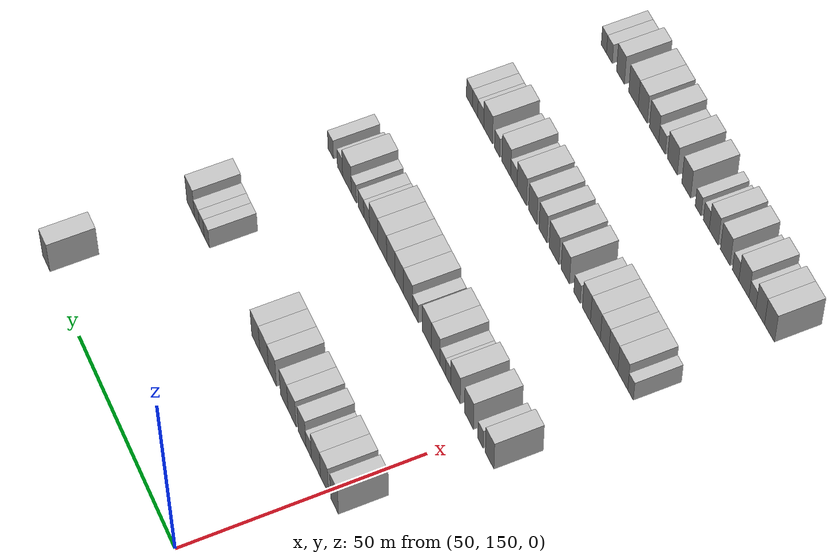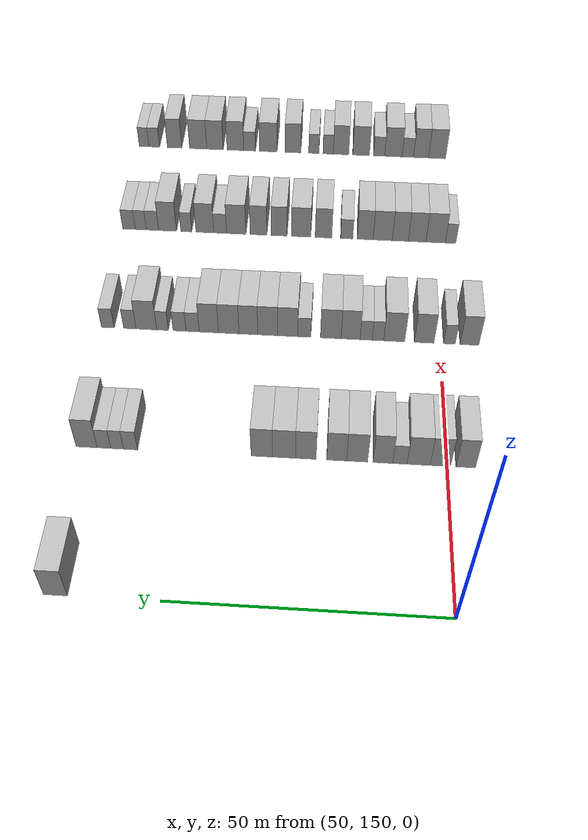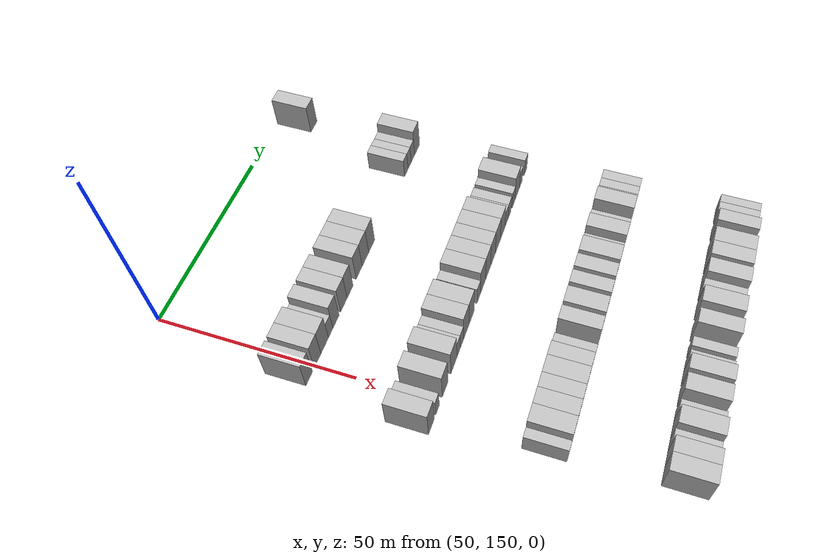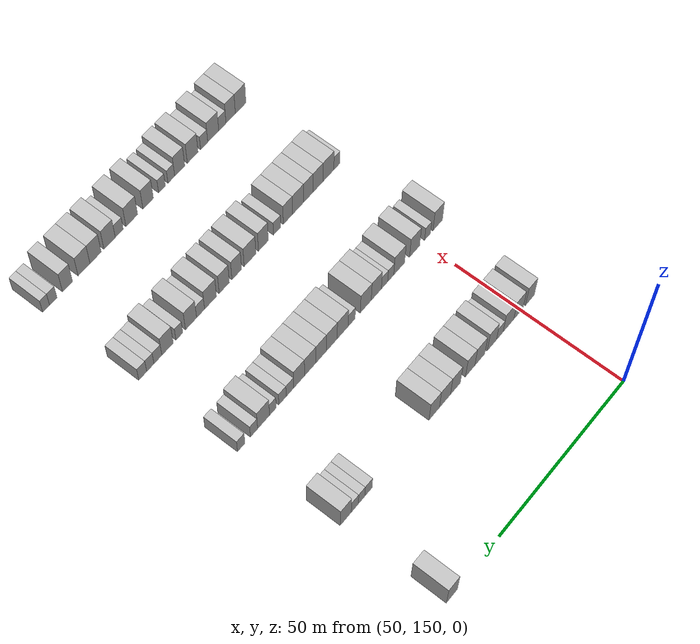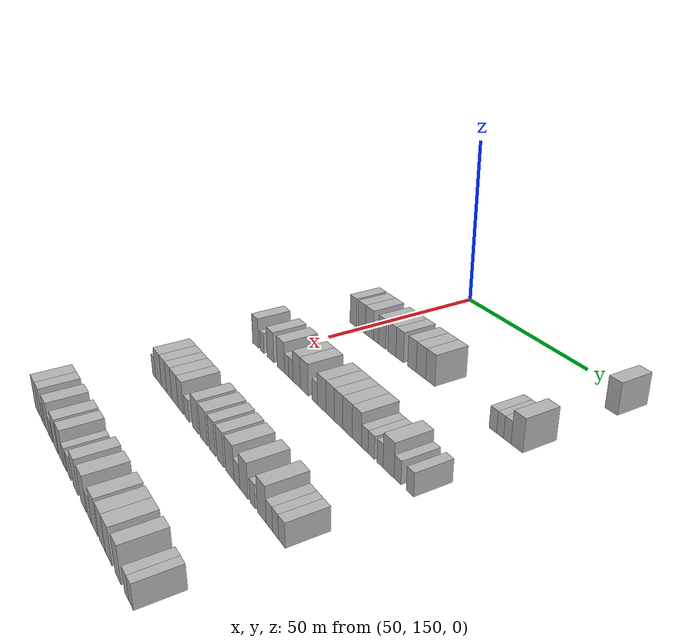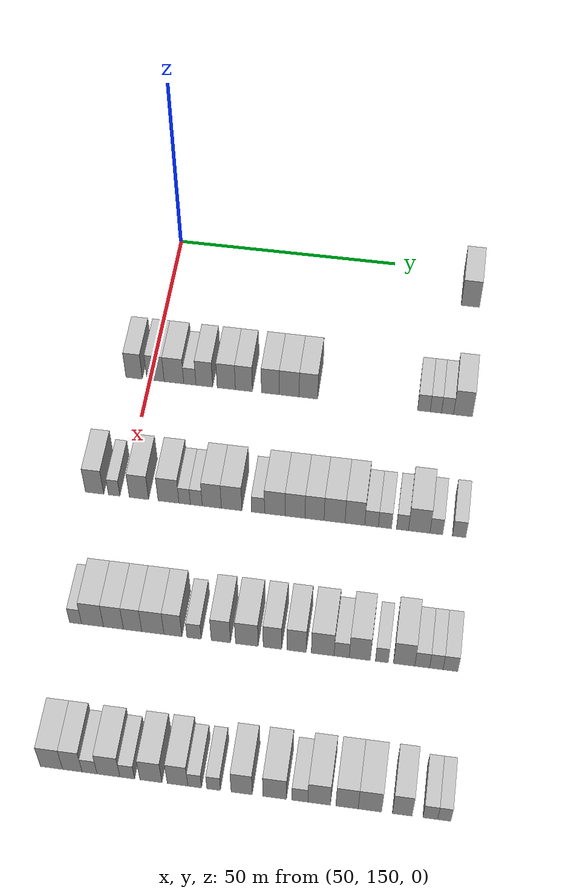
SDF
<sdf version="1.6">
 <world name="default">
  <model name="building_400">
   <static>1</static>
   <pose>55.0000 218.0210 0 0.000000 0.000000 0.000000</pose>
   <link name="link">
    <pose>0 0 4.50 0 0 0</pose>
    <collision name="collision"><geometry><box><size>10.0000 4.1286 9.0000</size></box></geometry></collision>
    <visual name="visual">
     <cast_shadows>0</cast_shadows>
     <geometry><box><size>10.0000 4.1286 9.0000</size></box></geometry>
     <material>
      <script>
       <uri>model://HANNAS_wall/materials/scripts</uri>
       <uri>model://HANNAS_wall/materials/textures</uri>
       <name>vrc/HANNAS_wall</name>
      </script>
     </material>
    </visual>
   </link>
  </model>
  <model name="building_607">
   <static>1</static>
   <pose>85.0000 146.5369 0 0.000000 0.000000 0.000000</pose>
   <link name="link">
    <pose>0 0 4.50 0 0 0</pose>
    <collision name="collision"><geometry><box><size>10.0000 3.6554 9.0000</size></box></geometry></collision>
    <visual name="visual">
     <cast_shadows>0</cast_shadows>
     <geometry><box><size>10.0000 3.6554 9.0000</size></box></geometry>
     <material>
      <script>
       <uri>model://HANNAS_wall/materials/scripts</uri>
       <uri>model://HANNAS_wall/materials/textures</uri>
       <name>vrc/HANNAS_wall</name>
      </script>
     </material>
    </visual>
   </link>
  </model>
  <model name="building_608">
   <static>1</static>
   <pose>85.0000 151.2870 0 0.000000 0.000000 0.000000</pose>
   <link name="link">
    <pose>0 0 4.50 0 0 0</pose>
    <collision name="collision"><geometry><box><size>10.0000 3.8447 9.0000</size></box></geometry></collision>
    <visual name="visual">
     <cast_shadows>0</cast_shadows>
     <geometry><box><size>10.0000 3.8447 9.0000</size></box></geometry>
     <material>
      <script>
       <uri>model://HANNAS_wall/materials/scripts</uri>
       <uri>model://HANNAS_wall/materials/textures</uri>
       <name>vrc/HANNAS_wall</name>
      </script>
     </material>
    </visual>
   </link>
  </model>
  <model name="building_609">
   <static>1</static>
   <pose>85.0000 155.3871 0 0.000000 0.000000 0.000000</pose>
   <link name="link">
    <pose>0 0 4.50 0 0 0</pose>
    <collision name="collision"><geometry><box><size>10.0000 4.3556 9.0000</size></box></geometry></collision>
    <visual name="visual">
     <cast_shadows>0</cast_shadows>
     <geometry><box><size>10.0000 4.3556 9.0000</size></box></geometry>
     <material>
      <script>
       <uri>model://HANNAS_wall/materials/scripts</uri>
       <uri>model://HANNAS_wall/materials/textures</uri>
       <name>vrc/HANNAS_wall</name>
      </script>
     </material>
    </visual>
   </link>
  </model>
  <model name="building_610">
   <static>1</static>
   <pose>85.0000 158.9072 0 0.000000 0.000000 0.000000</pose>
   <link name="link">
    <pose>0 0 3.00 0 0 0</pose>
    <collision name="collision"><geometry><box><size>10.0000 2.6845 6.0000</size></box></geometry></collision>
    <visual name="visual">
     <cast_shadows>0</cast_shadows>
     <geometry><box><size>10.0000 2.6845 6.0000</size></box></geometry>
     <material>
      <script>
       <uri>model://HANNAS_wall/materials/scripts</uri>
       <uri>model://HANNAS_wall/materials/textures</uri>
       <name>vrc/HANNAS_wall</name>
      </script>
     </material>
    </visual>
   </link>
  </model>
  <model name="building_611">
   <static>1</static>
   <pose>85.0000 162.1031 0 0.000000 0.000000 0.000000</pose>
   <link name="link">
    <pose>0 0 4.50 0 0 0</pose>
    <collision name="collision"><geometry><box><size>10.0000 3.7073 9.0000</size></box></geometry></collision>
    <visual name="visual">
     <cast_shadows>0</cast_shadows>
     <geometry><box><size>10.0000 3.7073 9.0000</size></box></geometry>
     <material>
      <script>
       <uri>model://HANNAS_wall/materials/scripts</uri>
       <uri>model://HANNAS_wall/materials/textures</uri>
       <name>vrc/HANNAS_wall</name>
      </script>
     </material>
    </visual>
   </link>
  </model>
  <model name="building_612">
   <static>1</static>
   <pose>85.0000 166.9624 0 0.000000 0.000000 0.000000</pose>
   <link name="link">
    <pose>0 0 4.50 0 0 0</pose>
    <collision name="collision"><geometry><box><size>10.0000 4.0112 9.0000</size></box></geometry></collision>
    <visual name="visual">
     <cast_shadows>0</cast_shadows>
     <geometry><box><size>10.0000 4.0112 9.0000</size></box></geometry>
     <material>
      <script>
       <uri>model://HANNAS_wall/materials/scripts</uri>
       <uri>model://HANNAS_wall/materials/textures</uri>
       <name>vrc/HANNAS_wall</name>
      </script>
     </material>
    </visual>
   </link>
  </model>
  <model name="building_613">
   <static>1</static>
   <pose>85.0000 170.8373 0 0.000000 0.000000 0.000000</pose>
   <link name="link">
    <pose>0 0 4.50 0 0 0</pose>
    <collision name="collision"><geometry><box><size>10.0000 3.7385 9.0000</size></box></geometry></collision>
    <visual name="visual">
     <cast_shadows>0</cast_shadows>
     <geometry><box><size>10.0000 3.7385 9.0000</size></box></geometry>
     <material>
      <script>
       <uri>model://HANNAS_wall/materials/scripts</uri>
       <uri>model://HANNAS_wall/materials/textures</uri>
       <name>vrc/HANNAS_wall</name>
      </script>
     </material>
    </visual>
   </link>
  </model>
  <model name="building_614">
   <static>1</static>
   <pose>85.0000 176.6655 0 0.000000 0.000000 0.000000</pose>
   <link name="link">
    <pose>0 0 4.50 0 0 0</pose>
    <collision name="collision"><geometry><box><size>10.0000 3.9181 9.0000</size></box></geometry></collision>
    <visual name="visual">
     <cast_shadows>0</cast_shadows>
     <geometry><box><size>10.0000 3.9181 9.0000</size></box></geometry>
     <material>
      <script>
       <uri>model://HANNAS_wall/materials/scripts</uri>
       <uri>model://HANNAS_wall/materials/textures</uri>
       <name>vrc/HANNAS_wall</name>
      </script>
     </material>
    </visual>
   </link>
  </model>
  <model name="building_615">
   <static>1</static>
   <pose>85.0000 180.8006 0 0.000000 0.000000 0.000000</pose>
   <link name="link">
    <pose>0 0 4.50 0 0 0</pose>
    <collision name="collision"><geometry><box><size>10.0000 4.3520 9.0000</size></box></geometry></collision>
    <visual name="visual">
     <cast_shadows>0</cast_shadows>
     <geometry><box><size>10.0000 4.3520 9.0000</size></box></geometry>
     <material>
      <script>
       <uri>model://HANNAS_wall/materials/scripts</uri>
       <uri>model://HANNAS_wall/materials/textures</uri>
       <name>vrc/HANNAS_wall</name>
      </script>
     </material>
    </visual>
   </link>
  </model>
  <model name="building_616">
   <static>1</static>
   <pose>85.0000 185.0105 0 0.000000 0.000000 0.000000</pose>
   <link name="link">
    <pose>0 0 4.50 0 0 0</pose>
    <collision name="collision"><geometry><box><size>10.0000 4.0678 9.0000</size></box></geometry></collision>
    <visual name="visual">
     <cast_shadows>0</cast_shadows>
     <geometry><box><size>10.0000 4.0678 9.0000</size></box></geometry>
     <material>
      <script>
       <uri>model://HANNAS_wall/materials/scripts</uri>
       <uri>model://HANNAS_wall/materials/textures</uri>
       <name>vrc/HANNAS_wall</name>
      </script>
     </material>
    </visual>
   </link>
  </model>
  <model name="building_617">
   <static>1</static>
   <pose>85.0000 210.1346 0 0.000000 0.000000 0.000000</pose>
   <link name="link">
    <pose>0 0 3.00 0 0 0</pose>
    <collision name="collision"><geometry><box><size>10.0000 2.7268 6.0000</size></box></geometry></collision>
    <visual name="visual">
     <cast_shadows>0</cast_shadows>
     <geometry><box><size>10.0000 2.7268 6.0000</size></box></geometry>
     <material>
      <script>
       <uri>model://HANNAS_wall/materials/scripts</uri>
       <uri>model://HANNAS_wall/materials/textures</uri>
       <name>vrc/HANNAS_wall</name>
      </script>
     </material>
    </visual>
   </link>
  </model>
  <model name="building_618">
   <static>1</static>
   <pose>85.0000 212.7203 0 0.000000 0.000000 0.000000</pose>
   <link name="link">
    <pose>0 0 3.00 0 0 0</pose>
    <collision name="collision"><geometry><box><size>10.0000 2.4447 6.0000</size></box></geometry></collision>
    <visual name="visual">
     <cast_shadows>0</cast_shadows>
     <geometry><box><size>10.0000 2.4447 6.0000</size></box></geometry>
     <material>
      <script>
       <uri>model://HANNAS_wall/materials/scripts</uri>
       <uri>model://HANNAS_wall/materials/textures</uri>
       <name>vrc/HANNAS_wall</name>
      </script>
     </material>
    </visual>
   </link>
  </model>
  <model name="building_619">
   <static>1</static>
   <pose>85.0000 215.2509 0 0.000000 0.000000 0.000000</pose>
   <link name="link">
    <pose>0 0 3.00 0 0 0</pose>
    <collision name="collision"><geometry><box><size>10.0000 2.6164 6.0000</size></box></geometry></collision>
    <visual name="visual">
     <cast_shadows>0</cast_shadows>
     <geometry><box><size>10.0000 2.6164 6.0000</size></box></geometry>
     <material>
      <script>
       <uri>model://HANNAS_wall/materials/scripts</uri>
       <uri>model://HANNAS_wall/materials/textures</uri>
       <name>vrc/HANNAS_wall</name>
      </script>
     </material>
    </visual>
   </link>
  </model>
  <model name="building_620">
   <static>1</static>
   <pose>85.0000 218.5862 0 0.000000 0.000000 0.000000</pose>
   <link name="link">
    <pose>0 0 4.50 0 0 0</pose>
    <collision name="collision"><geometry><box><size>10.0000 4.0541 9.0000</size></box></geometry></collision>
    <visual name="visual">
     <cast_shadows>0</cast_shadows>
     <geometry><box><size>10.0000 4.0541 9.0000</size></box></geometry>
     <material>
      <script>
       <uri>model://HANNAS_wall/materials/scripts</uri>
       <uri>model://HANNAS_wall/materials/textures</uri>
       <name>vrc/HANNAS_wall</name>
      </script>
     </material>
    </visual>
   </link>
  </model>
  <model name="building_832">
   <static>1</static>
   <pose>115.0000 143.9436 0 0.000000 0.000000 0.000000</pose>
   <link name="link">
    <pose>0 0 4.50 0 0 0</pose>
    <collision name="collision"><geometry><box><size>10.0000 3.8871 9.0000</size></box></geometry></collision>
    <visual name="visual">
     <cast_shadows>0</cast_shadows>
     <geometry><box><size>10.0000 3.8871 9.0000</size></box></geometry>
     <material>
      <script>
       <uri>model://HANNAS_wall/materials/scripts</uri>
       <uri>model://HANNAS_wall/materials/textures</uri>
       <name>vrc/HANNAS_wall</name>
      </script>
     </material>
    </visual>
   </link>
  </model>
  <model name="building_833">
   <static>1</static>
   <pose>115.0000 148.1008 0 0.000000 0.000000 0.000000</pose>
   <link name="link">
    <pose>0 0 3.00 0 0 0</pose>
    <collision name="collision"><geometry><box><size>10.0000 2.4274 6.0000</size></box></geometry></collision>
    <visual name="visual">
     <cast_shadows>0</cast_shadows>
     <geometry><box><size>10.0000 2.4274 6.0000</size></box></geometry>
     <material>
      <script>
       <uri>model://HANNAS_wall/materials/scripts</uri>
       <uri>model://HANNAS_wall/materials/textures</uri>
       <name>vrc/HANNAS_wall</name>
      </script>
     </material>
    </visual>
   </link>
  </model>
  <model name="building_834">
   <static>1</static>
   <pose>115.0000 153.3546 0 0.000000 0.000000 0.000000</pose>
   <link name="link">
    <pose>0 0 4.50 0 0 0</pose>
    <collision name="collision"><geometry><box><size>10.0000 4.0801 9.0000</size></box></geometry></collision>
    <visual name="visual">
     <cast_shadows>0</cast_shadows>
     <geometry><box><size>10.0000 4.0801 9.0000</size></box></geometry>
     <material>
      <script>
       <uri>model://HANNAS_wall/materials/scripts</uri>
       <uri>model://HANNAS_wall/materials/textures</uri>
       <name>vrc/HANNAS_wall</name>
      </script>
     </material>
    </visual>
   </link>
  </model>
  <model name="building_835">
   <static>1</static>
   <pose>115.0000 159.5913 0 0.000000 0.000000 0.000000</pose>
   <link name="link">
    <pose>0 0 4.50 0 0 0</pose>
    <collision name="collision"><geometry><box><size>10.0000 4.3933 9.0000</size></box></geometry></collision>
    <visual name="visual">
     <cast_shadows>0</cast_shadows>
     <geometry><box><size>10.0000 4.3933 9.0000</size></box></geometry>
     <material>
      <script>
       <uri>model://HANNAS_wall/materials/scripts</uri>
       <uri>model://HANNAS_wall/materials/textures</uri>
       <name>vrc/HANNAS_wall</name>
      </script>
     </material>
    </visual>
   </link>
  </model>
  <model name="building_836">
   <static>1</static>
   <pose>115.0000 162.9880 0 0.000000 0.000000 0.000000</pose>
   <link name="link">
    <pose>0 0 3.00 0 0 0</pose>
    <collision name="collision"><geometry><box><size>10.0000 2.4001 6.0000</size></box></geometry></collision>
    <visual name="visual">
     <cast_shadows>0</cast_shadows>
     <geometry><box><size>10.0000 2.4001 6.0000</size></box></geometry>
     <material>
      <script>
       <uri>model://HANNAS_wall/materials/scripts</uri>
       <uri>model://HANNAS_wall/materials/textures</uri>
       <name>vrc/HANNAS_wall</name>
      </script>
     </material>
    </visual>
   </link>
  </model>
  <model name="building_837">
   <static>1</static>
   <pose>115.0000 165.4430 0 0.000000 0.000000 0.000000</pose>
   <link name="link">
    <pose>0 0 3.00 0 0 0</pose>
    <collision name="collision"><geometry><box><size>10.0000 2.5099 6.0000</size></box></geometry></collision>
    <visual name="visual">
     <cast_shadows>0</cast_shadows>
     <geometry><box><size>10.0000 2.5099 6.0000</size></box></geometry>
     <material>
      <script>
       <uri>model://HANNAS_wall/materials/scripts</uri>
       <uri>model://HANNAS_wall/materials/textures</uri>
       <name>vrc/HANNAS_wall</name>
      </script>
     </material>
    </visual>
   </link>
  </model>
  <model name="building_838">
   <static>1</static>
   <pose>115.0000 168.7030 0 0.000000 0.000000 0.000000</pose>
   <link name="link">
    <pose>0 0 4.50 0 0 0</pose>
    <collision name="collision"><geometry><box><size>10.0000 4.0102 9.0000</size></box></geometry></collision>
    <visual name="visual">
     <cast_shadows>0</cast_shadows>
     <geometry><box><size>10.0000 4.0102 9.0000</size></box></geometry>
     <material>
      <script>
       <uri>model://HANNAS_wall/materials/scripts</uri>
       <uri>model://HANNAS_wall/materials/textures</uri>
       <name>vrc/HANNAS_wall</name>
      </script>
     </material>
    </visual>
   </link>
  </model>
  <model name="building_839">
   <static>1</static>
   <pose>115.0000 172.8626 0 0.000000 0.000000 0.000000</pose>
   <link name="link">
    <pose>0 0 4.50 0 0 0</pose>
    <collision name="collision"><geometry><box><size>10.0000 4.3090 9.0000</size></box></geometry></collision>
    <visual name="visual">
     <cast_shadows>0</cast_shadows>
     <geometry><box><size>10.0000 4.3090 9.0000</size></box></geometry>
     <material>
      <script>
       <uri>model://HANNAS_wall/materials/scripts</uri>
       <uri>model://HANNAS_wall/materials/textures</uri>
       <name>vrc/HANNAS_wall</name>
      </script>
     </material>
    </visual>
   </link>
  </model>
  <model name="building_840">
   <static>1</static>
   <pose>115.0000 178.3812 0 0.000000 0.000000 0.000000</pose>
   <link name="link">
    <pose>0 0 3.00 0 0 0</pose>
    <collision name="collision"><geometry><box><size>10.0000 2.7280 6.0000</size></box></geometry></collision>
    <visual name="visual">
     <cast_shadows>0</cast_shadows>
     <geometry><box><size>10.0000 2.7280 6.0000</size></box></geometry>
     <material>
      <script>
       <uri>model://HANNAS_wall/materials/scripts</uri>
       <uri>model://HANNAS_wall/materials/textures</uri>
       <name>vrc/HANNAS_wall</name>
      </script>
     </material>
    </visual>
   </link>
  </model>
  <model name="building_841">
   <static>1</static>
   <pose>115.0000 181.8839 0 0.000000 0.000000 0.000000</pose>
   <link name="link">
    <pose>0 0 4.50 0 0 0</pose>
    <collision name="collision"><geometry><box><size>10.0000 4.2775 9.0000</size></box></geometry></collision>
    <visual name="visual">
     <cast_shadows>0</cast_shadows>
     <geometry><box><size>10.0000 4.2775 9.0000</size></box></geometry>
     <material>
      <script>
       <uri>model://HANNAS_wall/materials/scripts</uri>
       <uri>model://HANNAS_wall/materials/textures</uri>
       <name>vrc/HANNAS_wall</name>
      </script>
     </material>
    </visual>
   </link>
  </model>
  <model name="building_842">
   <static>1</static>
   <pose>115.0000 186.1047 0 0.000000 0.000000 0.000000</pose>
   <link name="link">
    <pose>0 0 4.50 0 0 0</pose>
    <collision name="collision"><geometry><box><size>10.0000 4.1642 9.0000</size></box></geometry></collision>
    <visual name="visual">
     <cast_shadows>0</cast_shadows>
     <geometry><box><size>10.0000 4.1642 9.0000</size></box></geometry>
     <material>
      <script>
       <uri>model://HANNAS_wall/materials/scripts</uri>
       <uri>model://HANNAS_wall/materials/textures</uri>
       <name>vrc/HANNAS_wall</name>
      </script>
     </material>
    </visual>
   </link>
  </model>
  <model name="building_843">
   <static>1</static>
   <pose>115.0000 190.1645 0 0.000000 0.000000 0.000000</pose>
   <link name="link">
    <pose>0 0 4.50 0 0 0</pose>
    <collision name="collision"><geometry><box><size>10.0000 3.9553 9.0000</size></box></geometry></collision>
    <visual name="visual">
     <cast_shadows>0</cast_shadows>
     <geometry><box><size>10.0000 3.9553 9.0000</size></box></geometry>
     <material>
      <script>
       <uri>model://HANNAS_wall/materials/scripts</uri>
       <uri>model://HANNAS_wall/materials/textures</uri>
       <name>vrc/HANNAS_wall</name>
      </script>
     </material>
    </visual>
   </link>
  </model>
  <model name="building_844">
   <static>1</static>
   <pose>115.0000 194.3138 0 0.000000 0.000000 0.000000</pose>
   <link name="link">
    <pose>0 0 4.50 0 0 0</pose>
    <collision name="collision"><geometry><box><size>10.0000 4.3434 9.0000</size></box></geometry></collision>
    <visual name="visual">
     <cast_shadows>0</cast_shadows>
     <geometry><box><size>10.0000 4.3434 9.0000</size></box></geometry>
     <material>
      <script>
       <uri>model://HANNAS_wall/materials/scripts</uri>
       <uri>model://HANNAS_wall/materials/textures</uri>
       <name>vrc/HANNAS_wall</name>
      </script>
     </material>
    </visual>
   </link>
  </model>
  <model name="building_845">
   <static>1</static>
   <pose>115.0000 198.5264 0 0.000000 0.000000 0.000000</pose>
   <link name="link">
    <pose>0 0 4.50 0 0 0</pose>
    <collision name="collision"><geometry><box><size>10.0000 4.0819 9.0000</size></box></geometry></collision>
    <visual name="visual">
     <cast_shadows>0</cast_shadows>
     <geometry><box><size>10.0000 4.0819 9.0000</size></box></geometry>
     <material>
      <script>
       <uri>model://HANNAS_wall/materials/scripts</uri>
       <uri>model://HANNAS_wall/materials/textures</uri>
       <name>vrc/HANNAS_wall</name>
      </script>
     </material>
    </visual>
   </link>
  </model>
  <model name="building_846">
   <static>1</static>
   <pose>115.0000 201.9786 0 0.000000 0.000000 0.000000</pose>
   <link name="link">
    <pose>0 0 3.00 0 0 0</pose>
    <collision name="collision"><geometry><box><size>10.0000 2.8224 6.0000</size></box></geometry></collision>
    <visual name="visual">
     <cast_shadows>0</cast_shadows>
     <geometry><box><size>10.0000 2.8224 6.0000</size></box></geometry>
     <material>
      <script>
       <uri>model://HANNAS_wall/materials/scripts</uri>
       <uri>model://HANNAS_wall/materials/textures</uri>
       <name>vrc/HANNAS_wall</name>
      </script>
     </material>
    </visual>
   </link>
  </model>
  <model name="building_847">
   <static>1</static>
   <pose>115.0000 204.7551 0 0.000000 0.000000 0.000000</pose>
   <link name="link">
    <pose>0 0 3.00 0 0 0</pose>
    <collision name="collision"><geometry><box><size>10.0000 2.7306 6.0000</size></box></geometry></collision>
    <visual name="visual">
     <cast_shadows>0</cast_shadows>
     <geometry><box><size>10.0000 2.7306 6.0000</size></box></geometry>
     <material>
      <script>
       <uri>model://HANNAS_wall/materials/scripts</uri>
       <uri>model://HANNAS_wall/materials/textures</uri>
       <name>vrc/HANNAS_wall</name>
      </script>
     </material>
    </visual>
   </link>
  </model>
  <model name="building_848">
   <static>1</static>
   <pose>115.0000 208.3564 0 0.000000 0.000000 0.000000</pose>
   <link name="link">
    <pose>0 0 3.00 0 0 0</pose>
    <collision name="collision"><geometry><box><size>10.0000 2.4721 6.0000</size></box></geometry></collision>
    <visual name="visual">
     <cast_shadows>0</cast_shadows>
     <geometry><box><size>10.0000 2.4721 6.0000</size></box></geometry>
     <material>
      <script>
       <uri>model://HANNAS_wall/materials/scripts</uri>
       <uri>model://HANNAS_wall/materials/textures</uri>
       <name>vrc/HANNAS_wall</name>
      </script>
     </material>
    </visual>
   </link>
  </model>
  <model name="building_849">
   <static>1</static>
   <pose>115.0000 211.7989 0 0.000000 0.000000 0.000000</pose>
   <link name="link">
    <pose>0 0 4.50 0 0 0</pose>
    <collision name="collision"><geometry><box><size>10.0000 4.4128 9.0000</size></box></geometry></collision>
    <visual name="visual">
     <cast_shadows>0</cast_shadows>
     <geometry><box><size>10.0000 4.4128 9.0000</size></box></geometry>
     <material>
      <script>
       <uri>model://HANNAS_wall/materials/scripts</uri>
       <uri>model://HANNAS_wall/materials/textures</uri>
       <name>vrc/HANNAS_wall</name>
      </script>
     </material>
    </visual>
   </link>
  </model>
  <model name="building_850">
   <static>1</static>
   <pose>115.0000 215.3222 0 0.000000 0.000000 0.000000</pose>
   <link name="link">
    <pose>0 0 3.00 0 0 0</pose>
    <collision name="collision"><geometry><box><size>10.0000 2.6337 6.0000</size></box></geometry></collision>
    <visual name="visual">
     <cast_shadows>0</cast_shadows>
     <geometry><box><size>10.0000 2.6337 6.0000</size></box></geometry>
     <material>
      <script>
       <uri>model://HANNAS_wall/materials/scripts</uri>
       <uri>model://HANNAS_wall/materials/textures</uri>
       <name>vrc/HANNAS_wall</name>
      </script>
     </material>
    </visual>
   </link>
  </model>
  <model name="building_851">
   <static>1</static>
   <pose>115.0000 220.0068 0 0.000000 0.000000 0.000000</pose>
   <link name="link">
    <pose>0 0 3.00 0 0 0</pose>
    <collision name="collision"><geometry><box><size>10.0000 2.7357 6.0000</size></box></geometry></collision>
    <visual name="visual">
     <cast_shadows>0</cast_shadows>
     <geometry><box><size>10.0000 2.7357 6.0000</size></box></geometry>
     <material>
      <script>
       <uri>model://HANNAS_wall/materials/scripts</uri>
       <uri>model://HANNAS_wall/materials/textures</uri>
       <name>vrc/HANNAS_wall</name>
      </script>
     </material>
    </visual>
   </link>
  </model>
  <model name="building_1063">
   <static>1</static>
   <pose>145.0000 146.3541 0 0.000000 0.000000 0.000000</pose>
   <link name="link">
    <pose>0 0 3.00 0 0 0</pose>
    <collision name="collision"><geometry><box><size>10.0000 2.4199 6.0000</size></box></geometry></collision>
    <visual name="visual">
     <cast_shadows>0</cast_shadows>
     <geometry><box><size>10.0000 2.4199 6.0000</size></box></geometry>
     <material>
      <script>
       <uri>model://HANNAS_wall/materials/scripts</uri>
       <uri>model://HANNAS_wall/materials/textures</uri>
       <name>vrc/HANNAS_wall</name>
      </script>
     </material>
    </visual>
   </link>
  </model>
  <model name="building_1064">
   <static>1</static>
   <pose>145.0000 149.7691 0 0.000000 0.000000 0.000000</pose>
   <link name="link">
    <pose>0 0 4.50 0 0 0</pose>
    <collision name="collision"><geometry><box><size>10.0000 4.4101 9.0000</size></box></geometry></collision>
    <visual name="visual">
     <cast_shadows>0</cast_shadows>
     <geometry><box><size>10.0000 4.4101 9.0000</size></box></geometry>
     <material>
      <script>
       <uri>model://HANNAS_wall/materials/scripts</uri>
       <uri>model://HANNAS_wall/materials/textures</uri>
       <name>vrc/HANNAS_wall</name>
      </script>
     </material>
    </visual>
   </link>
  </model>
  <model name="building_1065">
   <static>1</static>
   <pose>145.0000 153.9793 0 0.000000 0.000000 0.000000</pose>
   <link name="link">
    <pose>0 0 4.50 0 0 0</pose>
    <collision name="collision"><geometry><box><size>10.0000 4.0102 9.0000</size></box></geometry></collision>
    <visual name="visual">
     <cast_shadows>0</cast_shadows>
     <geometry><box><size>10.0000 4.0102 9.0000</size></box></geometry>
     <material>
      <script>
       <uri>model://HANNAS_wall/materials/scripts</uri>
       <uri>model://HANNAS_wall/materials/textures</uri>
       <name>vrc/HANNAS_wall</name>
      </script>
     </material>
    </visual>
   </link>
  </model>
  <model name="building_1066">
   <static>1</static>
   <pose>145.0000 157.8211 0 0.000000 0.000000 0.000000</pose>
   <link name="link">
    <pose>0 0 4.50 0 0 0</pose>
    <collision name="collision"><geometry><box><size>10.0000 3.6734 9.0000</size></box></geometry></collision>
    <visual name="visual">
     <cast_shadows>0</cast_shadows>
     <geometry><box><size>10.0000 3.6734 9.0000</size></box></geometry>
     <material>
      <script>
       <uri>model://HANNAS_wall/materials/scripts</uri>
       <uri>model://HANNAS_wall/materials/textures</uri>
       <name>vrc/HANNAS_wall</name>
      </script>
     </material>
    </visual>
   </link>
  </model>
  <model name="building_1067">
   <static>1</static>
   <pose>145.0000 161.8676 0 0.000000 0.000000 0.000000</pose>
   <link name="link">
    <pose>0 0 4.50 0 0 0</pose>
    <collision name="collision"><geometry><box><size>10.0000 4.4196 9.0000</size></box></geometry></collision>
    <visual name="visual">
     <cast_shadows>0</cast_shadows>
     <geometry><box><size>10.0000 4.4196 9.0000</size></box></geometry>
     <material>
      <script>
       <uri>model://HANNAS_wall/materials/scripts</uri>
       <uri>model://HANNAS_wall/materials/textures</uri>
       <name>vrc/HANNAS_wall</name>
      </script>
     </material>
    </visual>
   </link>
  </model>
  <model name="building_1068">
   <static>1</static>
   <pose>145.0000 165.8832 0 0.000000 0.000000 0.000000</pose>
   <link name="link">
    <pose>0 0 4.50 0 0 0</pose>
    <collision name="collision"><geometry><box><size>10.0000 3.6117 9.0000</size></box></geometry></collision>
    <visual name="visual">
     <cast_shadows>0</cast_shadows>
     <geometry><box><size>10.0000 3.6117 9.0000</size></box></geometry>
     <material>
      <script>
       <uri>model://HANNAS_wall/materials/scripts</uri>
       <uri>model://HANNAS_wall/materials/textures</uri>
       <name>vrc/HANNAS_wall</name>
      </script>
     </material>
    </visual>
   </link>
  </model>
  <model name="building_1069">
   <static>1</static>
   <pose>145.0000 170.1122 0 0.000000 0.000000 0.000000</pose>
   <link name="link">
    <pose>0 0 3.00 0 0 0</pose>
    <collision name="collision"><geometry><box><size>10.0000 2.8463 6.0000</size></box></geometry></collision>
    <visual name="visual">
     <cast_shadows>0</cast_shadows>
     <geometry><box><size>10.0000 2.8463 6.0000</size></box></geometry>
     <material>
      <script>
       <uri>model://HANNAS_wall/materials/scripts</uri>
       <uri>model://HANNAS_wall/materials/textures</uri>
       <name>vrc/HANNAS_wall</name>
      </script>
     </material>
    </visual>
   </link>
  </model>
  <model name="building_1070">
   <static>1</static>
   <pose>145.0000 175.4476 0 0.000000 0.000000 0.000000</pose>
   <link name="link">
    <pose>0 0 4.50 0 0 0</pose>
    <collision name="collision"><geometry><box><size>10.0000 3.8245 9.0000</size></box></geometry></collision>
    <visual name="visual">
     <cast_shadows>0</cast_shadows>
     <geometry><box><size>10.0000 3.8245 9.0000</size></box></geometry>
     <material>
      <script>
       <uri>model://HANNAS_wall/materials/scripts</uri>
       <uri>model://HANNAS_wall/materials/textures</uri>
       <name>vrc/HANNAS_wall</name>
      </script>
     </material>
    </visual>
   </link>
  </model>
  <model name="building_1071">
   <static>1</static>
   <pose>145.0000 180.6030 0 0.000000 0.000000 0.000000</pose>
   <link name="link">
    <pose>0 0 4.50 0 0 0</pose>
    <collision name="collision"><geometry><box><size>10.0000 4.4864 9.0000</size></box></geometry></collision>
    <visual name="visual">
     <cast_shadows>0</cast_shadows>
     <geometry><box><size>10.0000 4.4864 9.0000</size></box></geometry>
     <material>
      <script>
       <uri>model://HANNAS_wall/materials/scripts</uri>
       <uri>model://HANNAS_wall/materials/textures</uri>
       <name>vrc/HANNAS_wall</name>
      </script>
     </material>
    </visual>
   </link>
  </model>
  <model name="building_1072">
   <static>1</static>
   <pose>145.0000 185.6750 0 0.000000 0.000000 0.000000</pose>
   <link name="link">
    <pose>0 0 4.50 0 0 0</pose>
    <collision name="collision"><geometry><box><size>10.0000 3.6575 9.0000</size></box></geometry></collision>
    <visual name="visual">
     <cast_shadows>0</cast_shadows>
     <geometry><box><size>10.0000 3.6575 9.0000</size></box></geometry>
     <material>
      <script>
       <uri>model://HANNAS_wall/materials/scripts</uri>
       <uri>model://HANNAS_wall/materials/textures</uri>
       <name>vrc/HANNAS_wall</name>
      </script>
     </material>
    </visual>
   </link>
  </model>
  <model name="building_1073">
   <static>1</static>
   <pose>145.0000 190.4278 0 0.000000 0.000000 0.000000</pose>
   <link name="link">
    <pose>0 0 4.50 0 0 0</pose>
    <collision name="collision"><geometry><box><size>10.0000 3.8481 9.0000</size></box></geometry></collision>
    <visual name="visual">
     <cast_shadows>0</cast_shadows>
     <geometry><box><size>10.0000 3.8481 9.0000</size></box></geometry>
     <material>
      <script>
       <uri>model://HANNAS_wall/materials/scripts</uri>
       <uri>model://HANNAS_wall/materials/textures</uri>
       <name>vrc/HANNAS_wall</name>
      </script>
     </material>
    </visual>
   </link>
  </model>
  <model name="building_1074">
   <static>1</static>
   <pose>145.0000 195.5951 0 0.000000 0.000000 0.000000</pose>
   <link name="link">
    <pose>0 0 4.50 0 0 0</pose>
    <collision name="collision"><geometry><box><size>10.0000 4.4865 9.0000</size></box></geometry></collision>
    <visual name="visual">
     <cast_shadows>0</cast_shadows>
     <geometry><box><size>10.0000 4.4865 9.0000</size></box></geometry>
     <material>
      <script>
       <uri>model://HANNAS_wall/materials/scripts</uri>
       <uri>model://HANNAS_wall/materials/textures</uri>
       <name>vrc/HANNAS_wall</name>
      </script>
     </material>
    </visual>
   </link>
  </model>
  <model name="building_1075">
   <static>1</static>
   <pose>145.0000 199.3284 0 0.000000 0.000000 0.000000</pose>
   <link name="link">
    <pose>0 0 3.00 0 0 0</pose>
    <collision name="collision"><geometry><box><size>10.0000 2.9802 6.0000</size></box></geometry></collision>
    <visual name="visual">
     <cast_shadows>0</cast_shadows>
     <geometry><box><size>10.0000 2.9802 6.0000</size></box></geometry>
     <material>
      <script>
       <uri>model://HANNAS_wall/materials/scripts</uri>
       <uri>model://HANNAS_wall/materials/textures</uri>
       <name>vrc/HANNAS_wall</name>
      </script>
     </material>
    </visual>
   </link>
  </model>
  <model name="building_1076">
   <static>1</static>
   <pose>145.0000 202.8800 0 0.000000 0.000000 0.000000</pose>
   <link name="link">
    <pose>0 0 4.50 0 0 0</pose>
    <collision name="collision"><geometry><box><size>10.0000 4.1229 9.0000</size></box></geometry></collision>
    <visual name="visual">
     <cast_shadows>0</cast_shadows>
     <geometry><box><size>10.0000 4.1229 9.0000</size></box></geometry>
     <material>
      <script>
       <uri>model://HANNAS_wall/materials/scripts</uri>
       <uri>model://HANNAS_wall/materials/textures</uri>
       <name>vrc/HANNAS_wall</name>
      </script>
     </material>
    </visual>
   </link>
  </model>
  <model name="building_1077">
   <static>1</static>
   <pose>145.0000 207.2065 0 0.000000 0.000000 0.000000</pose>
   <link name="link">
    <pose>0 0 3.00 0 0 0</pose>
    <collision name="collision"><geometry><box><size>10.0000 2.5300 6.0000</size></box></geometry></collision>
    <visual name="visual">
     <cast_shadows>0</cast_shadows>
     <geometry><box><size>10.0000 2.5300 6.0000</size></box></geometry>
     <material>
      <script>
       <uri>model://HANNAS_wall/materials/scripts</uri>
       <uri>model://HANNAS_wall/materials/textures</uri>
       <name>vrc/HANNAS_wall</name>
      </script>
     </material>
    </visual>
   </link>
  </model>
  <model name="building_1078">
   <static>1</static>
   <pose>145.0000 211.5542 0 0.000000 0.000000 0.000000</pose>
   <link name="link">
    <pose>0 0 4.50 0 0 0</pose>
    <collision name="collision"><geometry><box><size>10.0000 4.1655 9.0000</size></box></geometry></collision>
    <visual name="visual">
     <cast_shadows>0</cast_shadows>
     <geometry><box><size>10.0000 4.1655 9.0000</size></box></geometry>
     <material>
      <script>
       <uri>model://HANNAS_wall/materials/scripts</uri>
       <uri>model://HANNAS_wall/materials/textures</uri>
       <name>vrc/HANNAS_wall</name>
      </script>
     </material>
    </visual>
   </link>
  </model>
  <model name="building_1079">
   <static>1</static>
   <pose>145.0000 215.0805 0 0.000000 0.000000 0.000000</pose>
   <link name="link">
    <pose>0 0 3.00 0 0 0</pose>
    <collision name="collision"><geometry><box><size>10.0000 2.8870 6.0000</size></box></geometry></collision>
    <visual name="visual">
     <cast_shadows>0</cast_shadows>
     <geometry><box><size>10.0000 2.8870 6.0000</size></box></geometry>
     <material>
      <script>
       <uri>model://HANNAS_wall/materials/scripts</uri>
       <uri>model://HANNAS_wall/materials/textures</uri>
       <name>vrc/HANNAS_wall</name>
      </script>
     </material>
    </visual>
   </link>
  </model>
  <model name="building_1080">
   <static>1</static>
   <pose>145.0000 217.8345 0 0.000000 0.000000 0.000000</pose>
   <link name="link">
    <pose>0 0 3.00 0 0 0</pose>
    <collision name="collision"><geometry><box><size>10.0000 2.6209 6.0000</size></box></geometry></collision>
    <visual name="visual">
     <cast_shadows>0</cast_shadows>
     <geometry><box><size>10.0000 2.6209 6.0000</size></box></geometry>
     <material>
      <script>
       <uri>model://HANNAS_wall/materials/scripts</uri>
       <uri>model://HANNAS_wall/materials/textures</uri>
       <name>vrc/HANNAS_wall</name>
      </script>
     </material>
    </visual>
   </link>
  </model>
  <model name="building_1081">
   <static>1</static>
   <pose>145.0000 220.5866 0 0.000000 0.000000 0.000000</pose>
   <link name="link">
    <pose>0 0 3.00 0 0 0</pose>
    <collision name="collision"><geometry><box><size>10.0000 2.8834 6.0000</size></box></geometry></collision>
    <visual name="visual">
     <cast_shadows>0</cast_shadows>
     <geometry><box><size>10.0000 2.8834 6.0000</size></box></geometry>
     <material>
      <script>
       <uri>model://HANNAS_wall/materials/scripts</uri>
       <uri>model://HANNAS_wall/materials/textures</uri>
       <name>vrc/HANNAS_wall</name>
      </script>
     </material>
    </visual>
   </link>
  </model>
  <model name="building_1297">
   <static>1</static>
   <pose>175.0000 148.1944 0 0.000000 0.000000 0.000000</pose>
   <link name="link">
    <pose>0 0 4.50 0 0 0</pose>
    <collision name="collision"><geometry><box><size>10.0000 4.2426 9.0000</size></box></geometry></collision>
    <visual name="visual">
     <cast_shadows>0</cast_shadows>
     <geometry><box><size>10.0000 4.2426 9.0000</size></box></geometry>
     <material>
      <script>
       <uri>model://HANNAS_wall/materials/scripts</uri>
       <uri>model://HANNAS_wall/materials/textures</uri>
       <name>vrc/HANNAS_wall</name>
      </script>
     </material>
    </visual>
   </link>
  </model>
  <model name="building_1298">
   <static>1</static>
   <pose>175.0000 152.1752 0 0.000000 0.000000 0.000000</pose>
   <link name="link">
    <pose>0 0 4.50 0 0 0</pose>
    <collision name="collision"><geometry><box><size>10.0000 3.7189 9.0000</size></box></geometry></collision>
    <visual name="visual">
     <cast_shadows>0</cast_shadows>
     <geometry><box><size>10.0000 3.7189 9.0000</size></box></geometry>
     <material>
      <script>
       <uri>model://HANNAS_wall/materials/scripts</uri>
       <uri>model://HANNAS_wall/materials/textures</uri>
       <name>vrc/HANNAS_wall</name>
      </script>
     </material>
    </visual>
   </link>
  </model>
  <model name="building_1299">
   <static>1</static>
   <pose>175.0000 155.4638 0 0.000000 0.000000 0.000000</pose>
   <link name="link">
    <pose>0 0 3.00 0 0 0</pose>
    <collision name="collision"><geometry><box><size>10.0000 2.8584 6.0000</size></box></geometry></collision>
    <visual name="visual">
     <cast_shadows>0</cast_shadows>
     <geometry><box><size>10.0000 2.8584 6.0000</size></box></geometry>
     <material>
      <script>
       <uri>model://HANNAS_wall/materials/scripts</uri>
       <uri>model://HANNAS_wall/materials/textures</uri>
       <name>vrc/HANNAS_wall</name>
      </script>
     </material>
    </visual>
   </link>
  </model>
  <model name="building_1300">
   <static>1</static>
   <pose>175.0000 159.0568 0 0.000000 0.000000 0.000000</pose>
   <link name="link">
    <pose>0 0 4.50 0 0 0</pose>
    <collision name="collision"><geometry><box><size>10.0000 4.3276 9.0000</size></box></geometry></collision>
    <visual name="visual">
     <cast_shadows>0</cast_shadows>
     <geometry><box><size>10.0000 4.3276 9.0000</size></box></geometry>
     <material>
      <script>
       <uri>model://HANNAS_wall/materials/scripts</uri>
       <uri>model://HANNAS_wall/materials/textures</uri>
       <name>vrc/HANNAS_wall</name>
      </script>
     </material>
    </visual>
   </link>
  </model>
  <model name="building_1301">
   <static>1</static>
   <pose>175.0000 162.6157 0 0.000000 0.000000 0.000000</pose>
   <link name="link">
    <pose>0 0 3.00 0 0 0</pose>
    <collision name="collision"><geometry><box><size>10.0000 2.7902 6.0000</size></box></geometry></collision>
    <visual name="visual">
     <cast_shadows>0</cast_shadows>
     <geometry><box><size>10.0000 2.7902 6.0000</size></box></geometry>
     <material>
      <script>
       <uri>model://HANNAS_wall/materials/scripts</uri>
       <uri>model://HANNAS_wall/materials/textures</uri>
       <name>vrc/HANNAS_wall</name>
      </script>
     </material>
    </visual>
   </link>
  </model>
  <model name="building_1302">
   <static>1</static>
   <pose>175.0000 167.0980 0 0.000000 0.000000 0.000000</pose>
   <link name="link">
    <pose>0 0 4.50 0 0 0</pose>
    <collision name="collision"><geometry><box><size>10.0000 4.1744 9.0000</size></box></geometry></collision>
    <visual name="visual">
     <cast_shadows>0</cast_shadows>
     <geometry><box><size>10.0000 4.1744 9.0000</size></box></geometry>
     <material>
      <script>
       <uri>model://HANNAS_wall/materials/scripts</uri>
       <uri>model://HANNAS_wall/materials/textures</uri>
       <name>vrc/HANNAS_wall</name>
      </script>
     </material>
    </visual>
   </link>
  </model>
  <model name="building_1303">
   <static>1</static>
   <pose>175.0000 172.1297 0 0.000000 0.000000 0.000000</pose>
   <link name="link">
    <pose>0 0 4.50 0 0 0</pose>
    <collision name="collision"><geometry><box><size>10.0000 3.8888 9.0000</size></box></geometry></collision>
    <visual name="visual">
     <cast_shadows>0</cast_shadows>
     <geometry><box><size>10.0000 3.8888 9.0000</size></box></geometry>
     <material>
      <script>
       <uri>model://HANNAS_wall/materials/scripts</uri>
       <uri>model://HANNAS_wall/materials/textures</uri>
       <name>vrc/HANNAS_wall</name>
      </script>
     </material>
    </visual>
   </link>
  </model>
  <model name="building_1304">
   <static>1</static>
   <pose>175.0000 175.3609 0 0.000000 0.000000 0.000000</pose>
   <link name="link">
    <pose>0 0 3.00 0 0 0</pose>
    <collision name="collision"><geometry><box><size>10.0000 2.5737 6.0000</size></box></geometry></collision>
    <visual name="visual">
     <cast_shadows>0</cast_shadows>
     <geometry><box><size>10.0000 2.5737 6.0000</size></box></geometry>
     <material>
      <script>
       <uri>model://HANNAS_wall/materials/scripts</uri>
       <uri>model://HANNAS_wall/materials/textures</uri>
       <name>vrc/HANNAS_wall</name>
      </script>
     </material>
    </visual>
   </link>
  </model>
  <model name="building_1305">
   <static>1</static>
   <pose>175.0000 178.9300 0 0.000000 0.000000 0.000000</pose>
   <link name="link">
    <pose>0 0 3.00 0 0 0</pose>
    <collision name="collision"><geometry><box><size>10.0000 2.5644 6.0000</size></box></geometry></collision>
    <visual name="visual">
     <cast_shadows>0</cast_shadows>
     <geometry><box><size>10.0000 2.5644 6.0000</size></box></geometry>
     <material>
      <script>
       <uri>model://HANNAS_wall/materials/scripts</uri>
       <uri>model://HANNAS_wall/materials/textures</uri>
       <name>vrc/HANNAS_wall</name>
      </script>
     </material>
    </visual>
   </link>
  </model>
  <model name="building_1306">
   <static>1</static>
   <pose>175.0000 184.1951 0 0.000000 0.000000 0.000000</pose>
   <link name="link">
    <pose>0 0 4.50 0 0 0</pose>
    <collision name="collision"><geometry><box><size>10.0000 3.9657 9.0000</size></box></geometry></collision>
    <visual name="visual">
     <cast_shadows>0</cast_shadows>
     <geometry><box><size>10.0000 3.9657 9.0000</size></box></geometry>
     <material>
      <script>
       <uri>model://HANNAS_wall/materials/scripts</uri>
       <uri>model://HANNAS_wall/materials/textures</uri>
       <name>vrc/HANNAS_wall</name>
      </script>
     </material>
    </visual>
   </link>
  </model>
  <model name="building_1307">
   <static>1</static>
   <pose>175.0000 190.3783 0 0.000000 0.000000 0.000000</pose>
   <link name="link">
    <pose>0 0 4.50 0 0 0</pose>
    <collision name="collision"><geometry><box><size>10.0000 4.4006 9.0000</size></box></geometry></collision>
    <visual name="visual">
     <cast_shadows>0</cast_shadows>
     <geometry><box><size>10.0000 4.4006 9.0000</size></box></geometry>
     <material>
      <script>
       <uri>model://HANNAS_wall/materials/scripts</uri>
       <uri>model://HANNAS_wall/materials/textures</uri>
       <name>vrc/HANNAS_wall</name>
      </script>
     </material>
    </visual>
   </link>
  </model>
  <model name="building_1308">
   <static>1</static>
   <pose>175.0000 195.0711 0 0.000000 0.000000 0.000000</pose>
   <link name="link">
    <pose>0 0 3.00 0 0 0</pose>
    <collision name="collision"><geometry><box><size>10.0000 2.9851 6.0000</size></box></geometry></collision>
    <visual name="visual">
     <cast_shadows>0</cast_shadows>
     <geometry><box><size>10.0000 2.9851 6.0000</size></box></geometry>
     <material>
      <script>
       <uri>model://HANNAS_wall/materials/scripts</uri>
       <uri>model://HANNAS_wall/materials/textures</uri>
       <name>vrc/HANNAS_wall</name>
      </script>
     </material>
    </visual>
   </link>
  </model>
  <model name="building_1309">
   <static>1</static>
   <pose>175.0000 198.6622 0 0.000000 0.000000 0.000000</pose>
   <link name="link">
    <pose>0 0 4.50 0 0 0</pose>
    <collision name="collision"><geometry><box><size>10.0000 4.1971 9.0000</size></box></geometry></collision>
    <visual name="visual">
     <cast_shadows>0</cast_shadows>
     <geometry><box><size>10.0000 4.1971 9.0000</size></box></geometry>
     <material>
      <script>
       <uri>model://HANNAS_wall/materials/scripts</uri>
       <uri>model://HANNAS_wall/materials/textures</uri>
       <name>vrc/HANNAS_wall</name>
      </script>
     </material>
    </visual>
   </link>
  </model>
  <model name="building_1310">
   <static>1</static>
   <pose>175.0000 203.8329 0 0.000000 0.000000 0.000000</pose>
   <link name="link">
    <pose>0 0 4.50 0 0 0</pose>
    <collision name="collision"><geometry><box><size>10.0000 4.1442 9.0000</size></box></geometry></collision>
    <visual name="visual">
     <cast_shadows>0</cast_shadows>
     <geometry><box><size>10.0000 4.1442 9.0000</size></box></geometry>
     <material>
      <script>
       <uri>model://HANNAS_wall/materials/scripts</uri>
       <uri>model://HANNAS_wall/materials/textures</uri>
       <name>vrc/HANNAS_wall</name>
      </script>
     </material>
    </visual>
   </link>
  </model>
  <model name="building_1311">
   <static>1</static>
   <pose>175.0000 208.0743 0 0.000000 0.000000 0.000000</pose>
   <link name="link">
    <pose>0 0 4.50 0 0 0</pose>
    <collision name="collision"><geometry><box><size>10.0000 4.3386 9.0000</size></box></geometry></collision>
    <visual name="visual">
     <cast_shadows>0</cast_shadows>
     <geometry><box><size>10.0000 4.3386 9.0000</size></box></geometry>
     <material>
      <script>
       <uri>model://HANNAS_wall/materials/scripts</uri>
       <uri>model://HANNAS_wall/materials/textures</uri>
       <name>vrc/HANNAS_wall</name>
      </script>
     </material>
    </visual>
   </link>
  </model>
  <model name="building_1312">
   <static>1</static>
   <pose>175.0000 214.0621 0 0.000000 0.000000 0.000000</pose>
   <link name="link">
    <pose>0 0 4.50 0 0 0</pose>
    <collision name="collision"><geometry><box><size>10.0000 3.6371 9.0000</size></box></geometry></collision>
    <visual name="visual">
     <cast_shadows>0</cast_shadows>
     <geometry><box><size>10.0000 3.6371 9.0000</size></box></geometry>
     <material>
      <script>
       <uri>model://HANNAS_wall/materials/scripts</uri>
       <uri>model://HANNAS_wall/materials/textures</uri>
       <name>vrc/HANNAS_wall</name>
      </script>
     </material>
    </visual>
   </link>
  </model>
  <model name="building_1313">
   <static>1</static>
   <pose>175.0000 219.2308 0 0.000000 0.000000 0.000000</pose>
   <link name="link">
    <pose>0 0 3.00 0 0 0</pose>
    <collision name="collision"><geometry><box><size>10.0000 2.7002 6.0000</size></box></geometry></collision>
    <visual name="visual">
     <cast_shadows>0</cast_shadows>
     <geometry><box><size>10.0000 2.7002 6.0000</size></box></geometry>
     <material>
      <script>
       <uri>model://HANNAS_wall/materials/scripts</uri>
       <uri>model://HANNAS_wall/materials/textures</uri>
       <name>vrc/HANNAS_wall</name>
      </script>
     </material>
    </visual>
   </link>
  </model>
  <model name="building_1314">
   <static>1</static>
   <pose>175.0000 221.7955 0 0.000000 0.000000 0.000000</pose>
   <link name="link">
    <pose>0 0 3.00 0 0 0</pose>
    <collision name="collision"><geometry><box><size>10.0000 2.4292 6.0000</size></box></geometry></collision>
    <visual name="visual">
     <cast_shadows>0</cast_shadows>
     <geometry><box><size>10.0000 2.4292 6.0000</size></box></geometry>
     <material>
      <script>
       <uri>model://HANNAS_wall/materials/scripts</uri>
       <uri>model://HANNAS_wall/materials/textures</uri>
       <name>vrc/HANNAS_wall</name>
      </script>
     </material>
    </visual>
   </link>
  </model>
 </world>
</sdf>
